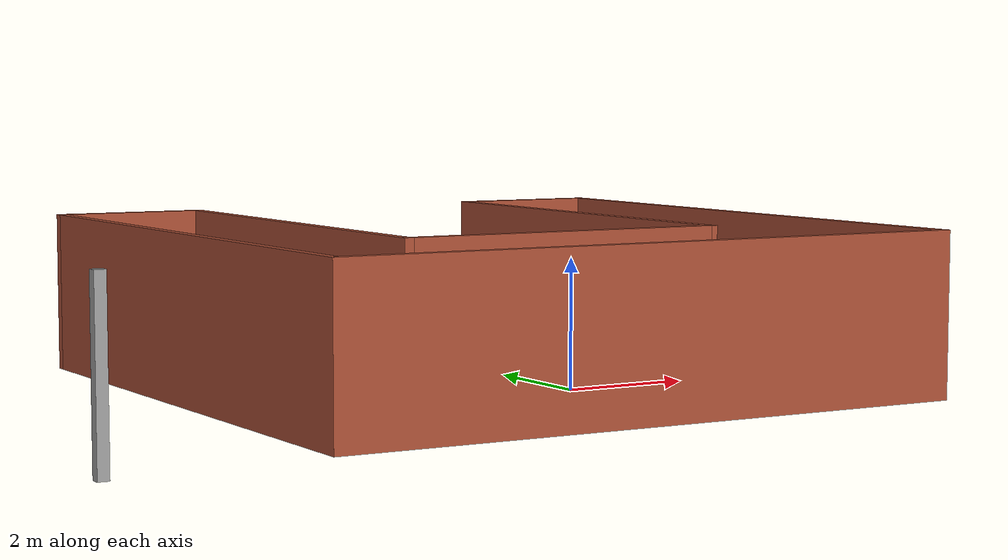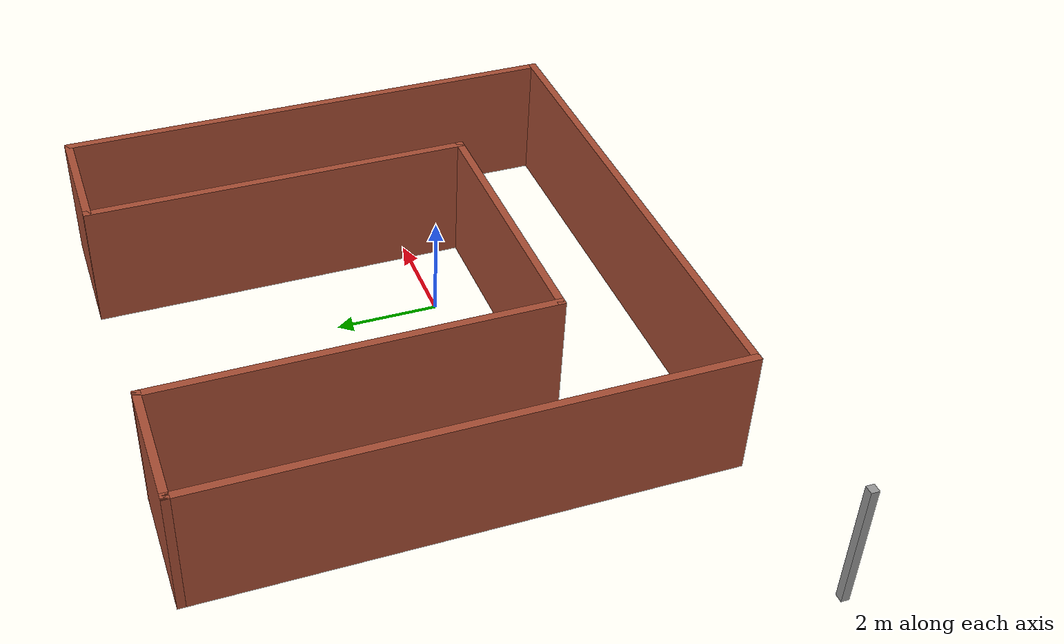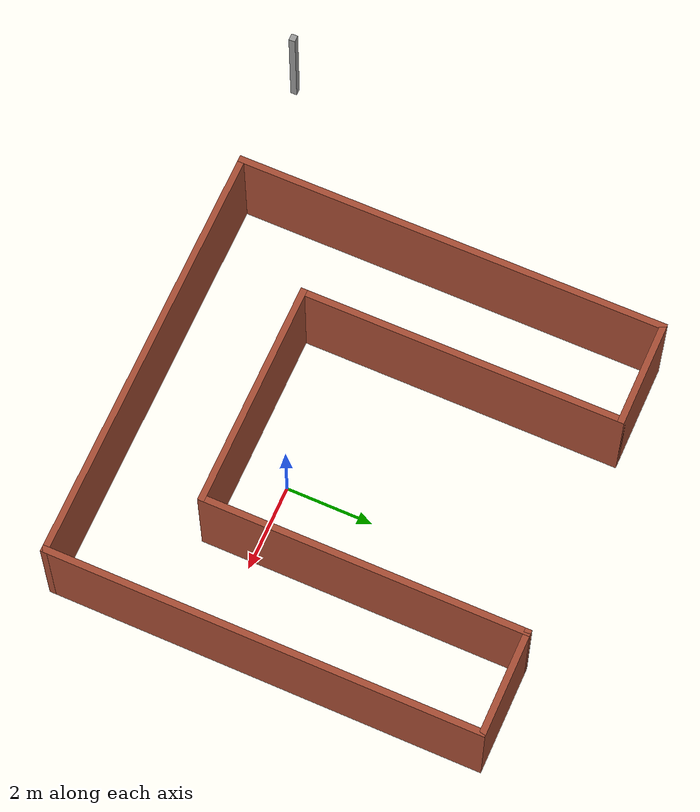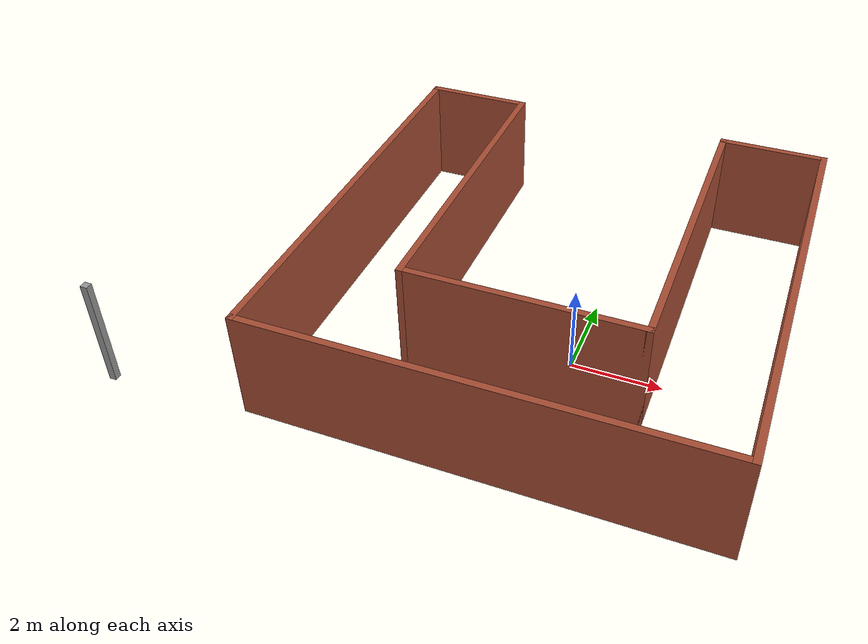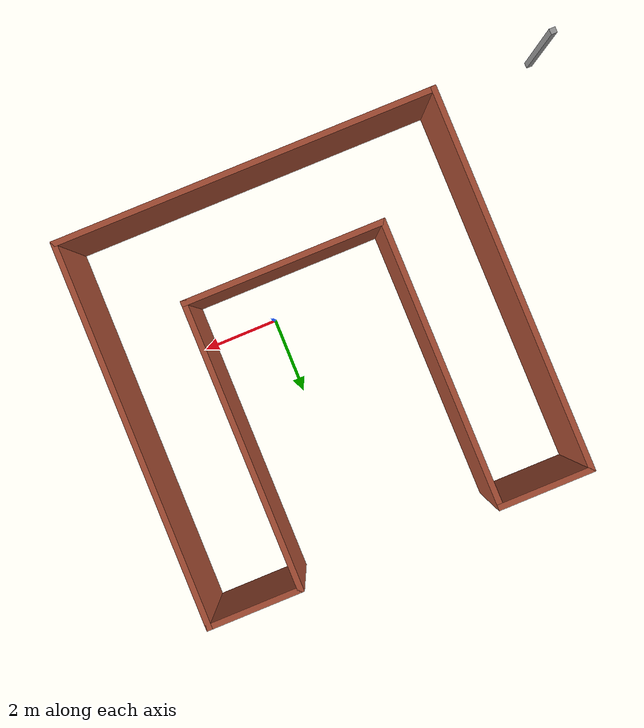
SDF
<?xml version='1.0'?>
<sdf version='1.6'>
  <model name='mybuilding'>
    <pose frame=''>-2.40585 1.21622 0 0 -0 0</pose>
    <link name='Wall_0'>
      <collision name='Wall_0_Collision'>
        <geometry>
          <box>
            <size>0.16 0.15 2.5</size>
          </box>
        </geometry>
        <pose frame=''>0 0 1.25 0 -0 0</pose>
      </collision>
      <visual name='Wall_0_Visual'>
        <pose frame=''>0 0 1.25 0 -0 0</pose>
        <geometry>
          <box>
            <size>0.16 0.15 2.5</size>
          </box>
        </geometry>
        <material>
          <script>
            <uri>file://media/materials/scripts/gazebo.material</uri>
            <name>Gazebo/Grey</name>
          </script>
          <ambient>1 1 1 1</ambient>
        </material>
        <meta>
          <layer>0</layer>
        </meta>
      </visual>
      <pose frame=''>-6.51373 -5.0293 0 0 -0 0</pose>
    </link>
    <link name='Wall_20'>
      <collision name='Wall_20_Collision'>
        <geometry>
          <box>
            <size>10 0.15 2.5</size>
          </box>
        </geometry>
        <pose frame=''>0 0 1.25 0 -0 0</pose>
      </collision>
      <visual name='Wall_20_Visual'>
        <pose frame=''>0 0 1.25 0 -0 0</pose>
        <geometry>
          <box>
            <size>10 0.15 2.5</size>
          </box>
        </geometry>
        <material>
          <script>
            <uri>file://media/materials/scripts/gazebo.material</uri>
            <name>Gazebo/Bricks</name>
          </script>
          <ambient>0.054902 0.545098 1 1</ambient>
        </material>
        <meta>
          <layer>0</layer>
        </meta>
      </visual>
      <pose frame=''>-3.33127 0.104295 0 0 0 -1.5708</pose>
    </link>
    <link name='Wall_22'>
      <collision name='Wall_22_Collision'>
        <geometry>
          <box>
            <size>10 0.15 2.5</size>
          </box>
        </geometry>
        <pose frame=''>0 0 1.25 0 -0 0</pose>
      </collision>
      <visual name='Wall_22_Visual'>
        <pose frame=''>0 0 1.25 0 -0 0</pose>
        <geometry>
          <box>
            <size>10 0.15 2.5</size>
          </box>
        </geometry>
        <material>
          <script>
            <uri>file://media/materials/scripts/gazebo.material</uri>
            <name>Gazebo/Bricks</name>
          </script>
          <ambient>0.054902 0.545098 1 1</ambient>
        </material>
        <meta>
          <layer>0</layer>
        </meta>
      </visual>
      <pose frame=''>1.59373 -4.82071 0 0 -0 0</pose>
    </link>
    <link name='Wall_26'>
      <collision name='Wall_26_Collision'>
        <geometry>
          <box>
            <size>2.5 0.15 2.5</size>
          </box>
        </geometry>
        <pose frame=''>0 0 1.25 0 -0 0</pose>
      </collision>
      <visual name='Wall_26_Visual'>
        <pose frame=''>0 0 1.25 0 -0 0</pose>
        <geometry>
          <box>
            <size>2.5 0.15 2.5</size>
          </box>
        </geometry>
        <material>
          <script>
            <uri>file://media/materials/scripts/gazebo.material</uri>
            <name>Gazebo/Bricks</name>
          </script>
          <ambient>0.054902 0.545098 1 1</ambient>
        </material>
        <meta>
          <layer>0</layer>
        </meta>
      </visual>
      <pose frame=''>-2.15627 5.0293 0 0 -0 0</pose>
    </link>
    <link name='Wall_30'>
      <collision name='Wall_30_Collision'>
        <geometry>
          <box>
            <size>7.5 0.15 2.5</size>
          </box>
        </geometry>
        <pose frame=''>0 0 1.25 0 -0 0</pose>
      </collision>
      <visual name='Wall_30_Visual'>
        <pose frame=''>0 0 1.25 0 -0 0</pose>
        <geometry>
          <box>
            <size>7.5 0.15 2.5</size>
          </box>
        </geometry>
        <material>
          <script>
            <uri>file://media/materials/scripts/gazebo.material</uri>
            <name>Gazebo/Bricks</name>
          </script>
          <ambient>0.054902 0.545098 1 1</ambient>
        </material>
        <meta>
          <layer>0</layer>
        </meta>
      </visual>
      <pose frame=''>-0.981268 1.3543 0 0 0 -1.5708</pose>
    </link>
    <link name='Wall_34'>
      <collision name='Wall_34_Collision'>
        <geometry>
          <box>
            <size>5.3 0.15 2.5</size>
          </box>
        </geometry>
        <pose frame=''>0 0 1.25 0 -0 0</pose>
      </collision>
      <visual name='Wall_34_Visual'>
        <pose frame=''>0 0 1.25 0 -0 0</pose>
        <geometry>
          <box>
            <size>5.3 0.15 2.5</size>
          </box>
        </geometry>
        <material>
          <script>
            <uri>file://media/materials/scripts/gazebo.material</uri>
            <name>Gazebo/Bricks</name>
          </script>
          <ambient>0.054902 0.545098 1 1</ambient>
        </material>
        <meta>
          <layer>0</layer>
        </meta>
      </visual>
      <pose frame=''>1.59373 -2.3207 0 0 -0 0</pose>
    </link>
    <link name='Wall_41'>
      <collision name='Wall_41_Collision'>
        <geometry>
          <box>
            <size>7.5 0.15 2.5</size>
          </box>
        </geometry>
        <pose frame=''>0 0 1.25 0 -0 0</pose>
      </collision>
      <visual name='Wall_41_Visual'>
        <pose frame=''>0 0 1.25 0 -0 0</pose>
        <geometry>
          <box>
            <size>7.5 0.15 2.5</size>
          </box>
        </geometry>
        <material>
          <script>
            <uri>file://media/materials/scripts/gazebo.material</uri>
            <name>Gazebo/Bricks</name>
          </script>
          <ambient>0.054902 0.545098 1 1</ambient>
        </material>
        <meta>
          <layer>0</layer>
        </meta>
      </visual>
      <pose frame=''>4.16873 1.3543 0 0 -0 1.5708</pose>
    </link>
    <link name='Wall_42'>
      <collision name='Wall_42_Collision'>
        <geometry>
          <box>
            <size>2.5 0.15 2.5</size>
          </box>
        </geometry>
        <pose frame=''>0 0 1.25 0 -0 0</pose>
      </collision>
      <visual name='Wall_42_Visual'>
        <pose frame=''>0 0 1.25 0 -0 0</pose>
        <geometry>
          <box>
            <size>2.5 0.15 2.5</size>
          </box>
        </geometry>
        <material>
          <script>
            <uri>file://media/materials/scripts/gazebo.material</uri>
            <name>Gazebo/Bricks</name>
          </script>
          <ambient>0.054902 0.545098 1 1</ambient>
        </material>
        <meta>
          <layer>0</layer>
        </meta>
      </visual>
      <pose frame=''>5.34373 5.0293 0 0 -0 0</pose>
    </link>
    <link name='Wall_44'>
      <collision name='Wall_44_Collision'>
        <geometry>
          <box>
            <size>10 0.15 2.5</size>
          </box>
        </geometry>
        <pose frame=''>0 0 1.25 0 -0 0</pose>
      </collision>
      <visual name='Wall_44_Visual'>
        <pose frame=''>0 0 1.25 0 -0 0</pose>
        <geometry>
          <box>
            <size>10 0.15 2.5</size>
          </box>
        </geometry>
        <material>
          <script>
            <uri>file://media/materials/scripts/gazebo.material</uri>
            <name>Gazebo/Bricks</name>
          </script>
          <ambient>0.054902 0.545098 1 1</ambient>
        </material>
        <meta>
          <layer>0</layer>
        </meta>
      </visual>
      <pose frame=''>6.51873 0.104295 0 0 0 -1.5708</pose>
    </link>
    <static>1</static>
  </model>
</sdf>
